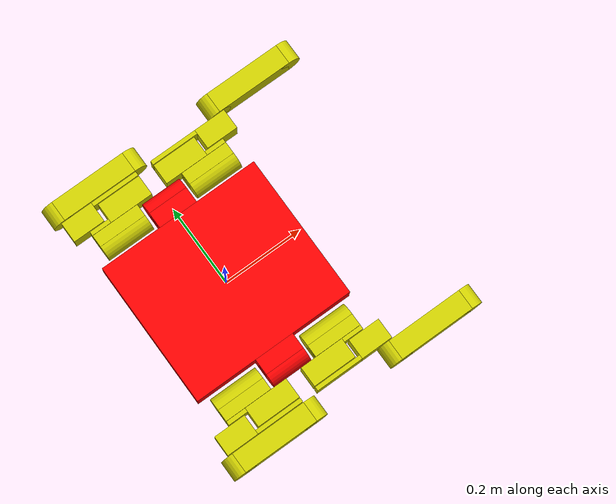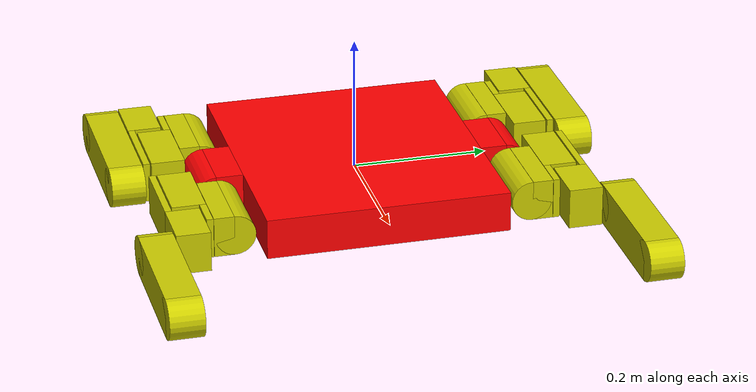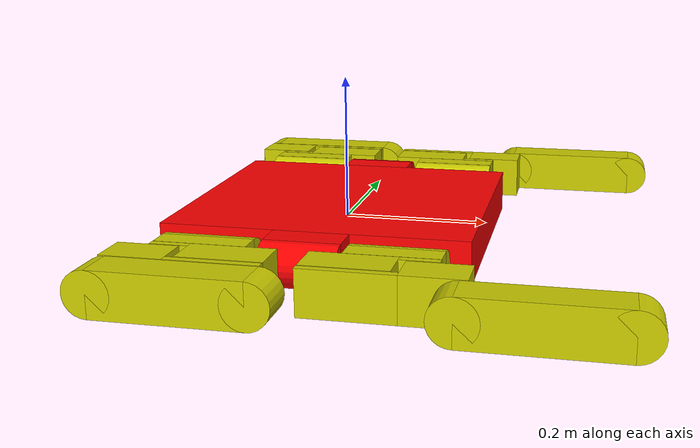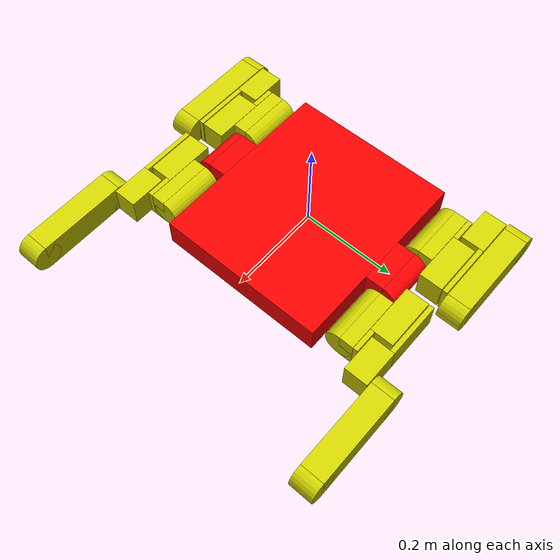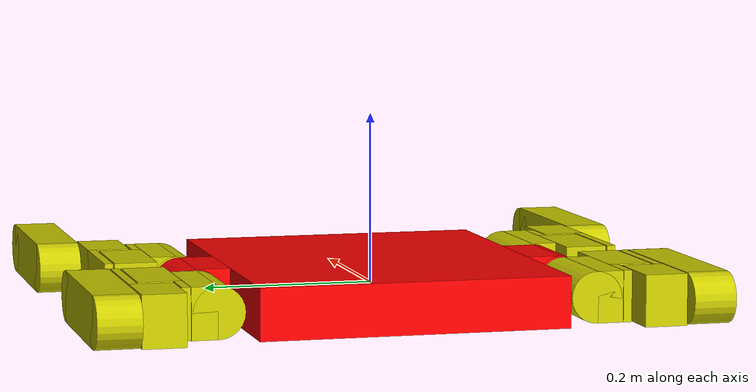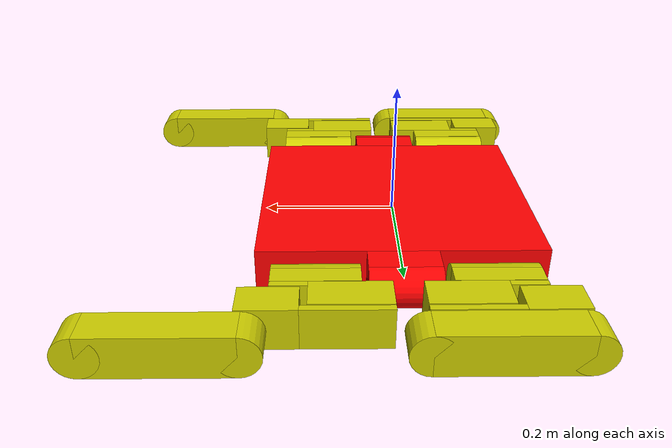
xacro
<?xml version="1.0"?>
<robot name="cricket_robot" xmlns:sensor="http://playerstage.sourceforge.net/gazebo/xmlschema/#sensor"
       xmlns:controller="http://playerstage.sourceforge.net/gazebo/xmlschema/#controller"
       xmlns:interface="http://playerstage.sourceforge.net/gazebo/xmlschema/#interface"
       xmlns:xacro="http://playerstage.sourceforge.net/gazebo/xmlschema/#xacro">
       <!-- xmlns:xacro="http://ros.org/wiki/xacro"> -->

  <xacro:property name="body_height" value="0.06"/>
  <xacro:property name="body_length" value="0.41"/>
  <xacro:property name="body_width" value="0.36"/>
  <xacro:property name="track_length" value="0.25"/>
  <xacro:property name="body_box_size" value="0.1"/>
  <xacro:property name="pi" value="3.1415" />
  <xacro:property name="cyl_rad" value="0.03" />
  <!-- Leg values -->
  <xacro:property name="shoulder" value="0.12" />
  <xacro:property name="s_box" value="-0.05" />
  <xacro:property name="s2_base" value="-0.015" />
  <xacro:property name="s2_box" value="0.045" />
  <xacro:property name="s2_base_box" value="-0.14"/>
  <xacro:property name="k_box" value="-0.03" />
  <xacro:property name="k_base_box" value="0.18" />
  <xacro:property name="track" value="0.095" />

  <material name="yellow">
    <color rgba="0.8 0.8 0 1"/>
  </material>

  <material name="red">
    <color rgba="1 0 0 1"/>
  </material>

  <xacro:macro name="default_inertial" params="mass">
    <inertial>
      <mass value="${mass}" />
      <inertia ixx="1.0" ixy="0.0" ixz="0.0" iyy="1.0" iyz="0.0" izz="1.0" />
    </inertial>
  </xacro:macro>

  <!-- main body -->
  <link name="base_link">
    <visual>
      <geometry>
        <box size="${body_length} ${body_width} ${body_height}"/>
      </geometry>
      <material name="red"/>
    </visual>
    <collision>
      <geometry>
        <box size="${body_length} ${body_width} ${body_height}"/>
      </geometry>
    </collision>
  </link>

  <link name="dummy_link">
    <visual name="">
      <origin xyz="0.0 0.0 0.0" rpy="0.0 0.0 0.0"/>
      <geometry>
        <box size="${body_length} ${body_width} ${body_height}"/>
      </geometry>
      <material name="red"/>
    </visual>
    <collision>
      <origin xyz="0.0 0.0 0.0" rpy="0.0 0.0 0.0"/>
      <geometry>
        <box size="0.0 0.0 0.0"/>
      </geometry>
    </collision>
    <xacro:default_inertial mass="10"/>
  </link>

  <joint name="dummy_joint" type="fixed">
    <origin xyz="0.0 0.0 0.0" rpy="0.0 0.0 0.0"/>
    <parent link="base_link"/>
    <child link="dummy_link"/>
    <axis xyz="0.0 0.0 0.0"/>
  </joint>

  <!-- #####  BODY  BOX ##### -->

  <xacro:macro name="body_box" params="body_side origin_bb origin_bc">
    <link name="${body_side}_box">
      <visual>
        <geometry>
            <box size="${body_box_size} 0.04 ${body_height}"/>
        </geometry>
        <material name="red"/>
      </visual>
      <collision>
        <geometry>
            <box size="${body_box_size} 0.04 ${body_height}"/>
        </geometry>
      </collision>
    </link>

    <joint name="body_to_${body_side}_box" type="fixed">
      <parent link="base_link"/>
      <child link="${body_side}_box"/>
      <origin xyz="0.0 ${origin_bb} 0.0"/>
    </joint>

    <link name="${body_side}_cylinder">
      <visual name="${body_side}_cylinder">
        <origin rpy="0 ${pi/2} 0" xyz="0 0.0 0"/>
        <geometry>
          <cylinder radius="${cyl_rad}" length="0.1"/>
        </geometry>
        <material name="red"/>
      </visual>
      <collision>
        <origin rpy="0 ${pi/2} 0" xyz="0 0.0 0"/>
        <geometry>
          <cylinder radius="${cyl_rad}" length="0.1"/>
        </geometry>
      </collision>
      <xacro:default_inertial mass="0.5"/>
    </link>

    <joint name="${body_side}_box_to_cylinder" type="fixed">
      <parent link="${body_side}_box"/>
      <child link="${body_side}_cylinder"/>
      <origin xyz="0.0 ${origin_bc} 0.0" rpy="0.0 0.0 0.0"/>
    </joint>

  </xacro:macro>

  <xacro:body_box body_side="right" origin_bb="0.2" origin_bc="0.02"/>
  <xacro:body_box body_side="left" origin_bb="-0.2" origin_bc="-0.02"/>

  <!-- ##### RIGHT LEGS ##### -->

  <xacro:macro name="right_leg" params="body_side rev rpy_track">
    <!-- SHOULDER 1 -->
    <link name="r_${body_side}_shoulder_cylinder">
      <visual name="r_${body_side}_shoulder_cylinder">
        <origin rpy="0 ${pi/2} 0" xyz="0.0 0.0 0"/>
        <geometry>
          <cylinder radius="${cyl_rad}" length="0.12"/>
        </geometry>
        <material name="yellow"/>
      </visual>
      <collision>
        <origin rpy="0 ${pi/2} 0" xyz="0.0 0.0 0"/>
        <geometry>
          <cylinder radius="${cyl_rad}" length="0.12"/>
        </geometry>
      </collision>
      <xacro:default_inertial mass="0.5"/>
    </link>

    <joint name="r_${body_side}_shoulder_to_body" type="revolute">
      <axis xyz="1 0.0 0.0"/>
      <limit effort="1000.0" lower="-1.57075" upper="1.57075" velocity="0.5"/>
      <origin xyz="${rev*shoulder} 0.0 0.0" rpy="0 0 0.0"/>
      <parent link="right_cylinder"/>
      <child link="r_${body_side}_shoulder_cylinder"/>
      <limit effort="30" velocity="1.0"/>
      <dynamics damping="0.0" friction="0.0"/>
    </joint>

    <transmission name="r_${body_side}_shoulder_to_body_trans">
      <type>transmission_interface/SimpleTransmission</type>
      <actuator name="${body_side}_r_shoulder_to_body_motor">
        <mechanicalReduction>1</mechanicalReduction>
      </actuator>
      <joint name="r_${body_side}_shoulder_to_body">
        <hardwareInterface>hardware_interface/PositionJointInterface</hardwareInterface>
      </joint>
    </transmission>

    <link name="r_${body_side}_shoulder_box">
      <visual name="r_${body_side}_shoulder_box">
        <origin rpy="0 0 0" xyz="${rev*s_box} -0.0005 0"/>
        <geometry>
          <box size="0.12 0.03 0.06"/>
        </geometry>
        <material name="yellow"/>
      </visual>
      <collision>
        <origin rpy="0 0 0" xyz="${rev*s_box} -0.0005 0"/>
        <geometry>
          <box size="0.12 0.03 0.06"/>
        </geometry>
      </collision>
      <xacro:default_inertial mass="3.5"/>
    </link>

    <joint name="r_${body_side}_shoulder_cyl_to_box" type="fixed">
      <origin xyz="${- rev * s_box} 0.017 0.0" rpy="0.0 0.0 0.0"/>
      <parent link="r_${body_side}_shoulder_cylinder"/>
      <child link="r_${body_side}_shoulder_box"/>
    </joint>

    <!-- SHOULDER 2 -->
    <link name="r_${body_side}_shoulder2_base">
      <visual name="r_${body_side}_shoulder2_base">
        <origin xyz="${rev*s2_base} 0.0 0.0" rpy="0.0 0.0 0.0"/>
        <geometry>
          <box size="0.05 0.01 0.06"/>
        </geometry>
        <material name="yellow"/>
      </visual>
      <collision>
        <origin xyz="${rev*s2_base} 0.0 0.0" rpy="0.0 0.0 0.0"/>
        <geometry>
          <box size="0.05 0.01 0.06"/>
        </geometry>
      </collision>
      <xacro:default_inertial mass="0.5"/>
    </link>

    <joint name="r_${body_side}_shoulder2_to_shoulder" type="continuous">
      <axis xyz="0.0 1 0.0"/>
      <origin xyz="0.0 0.02 0.0" rpy="0.0 0.0 0.0"/>
      <parent link="r_${body_side}_shoulder_box"/>
      <child link="r_${body_side}_shoulder2_base"/>
      <limit effort="30" velocity="1.0"/>
      <dynamics damping="0.0" friction="0.0"/>
    </joint>

    <transmission name="r_${body_side}_shoulder2_to_shoulder_trans">
      <type>transmission_interface/SimpleTransmission</type>
      <actuator name="${body_side}_$_shoulder2_to_shoulder_motor">
        <mechanicalReduction>1</mechanicalReduction>
      </actuator>
      <joint name="r_${body_side}_shoulder2_to_shoulder">
        <hardwareInterface>hardware_interface/PositionJointInterface</hardwareInterface>
      </joint>
    </transmission>

    <link name="r_${body_side}_shoulder2_box">
      <visual name="r_${body_side}_shoulder2_box">
        <origin xyz="${rev*s2_box} 0.02 0.0" rpy="0.0 0.0 0.0"/>
        <geometry>
          <box size="0.11 0.05 0.06"/>
        </geometry>
        <material name="yellow"/>
      </visual>
      <collision>
        <origin xyz="${rev*s2_box} 0.02 0.0" rpy="0.0 0.0 0.0"/>
        <geometry>
          <box size="0.11 0.05 0.06"/>
        </geometry>
      </collision>
      <xacro:default_inertial mass="3"/>
    </link>

    <joint name="r_${body_side}_shoulder2_base_to_box" type="fixed">
      <origin xyz="${rev*s2_base_box} 0.0 0.0" rpy="0.0 0.0 0.0"/>
      <parent link="r_${body_side}_shoulder2_base"/>
      <child link="r_${body_side}_shoulder2_box"/>
    </joint>

    <!-- KNEE -->
    <link name="r_${body_side}_knee_base">
      <visual name="r_${body_side}_knee_base">
        <origin xyz="${-rev * s_box} 0.0 0.0" rpy="0.0 0.0 0.0"/>
        <geometry>
          <box size="0.12 0.01 0.06"/>
        </geometry>
        <material name="yellow"/>
      </visual>
      <collision>
        <origin xyz="${-rev * s_box} 0.0 0.0" rpy="0.0 0.0 0.0"/>
        <geometry>
          <box size="0.12 0.01 0.06"/>
        </geometry>
      </collision>
      <xacro:default_inertial mass="0.5"/>
    </link>

    <joint name="r_${body_side}_shoulder2_to_knee" type="continuous">
      <axis xyz="0.0 1 0.0"/>
      <origin xyz="0.0 0.052 0.0" rpy="0.0 0.0 0.0"/>
      <parent link="r_${body_side}_shoulder2_box"/>
      <child link="r_${body_side}_knee_base"/>
      <limit effort="30" velocity="1.0"/>
      <dynamics damping="0.0" friction="0.0"/>
    </joint>

    <transmission name="r_${body_side}_shoulder2_to_knee_trans">
      <type>transmission_interface/SimpleTransmission</type>
      <actuator name="${body_side}_r_shoulder2_to_knee_motor">
        <mechanicalReduction>1</mechanicalReduction>
      </actuator>
      <joint name="r_${body_side}_shoulder2_to_knee">
        <hardwareInterface>hardware_interface/PositionJointInterface</hardwareInterface>
      </joint>
    </transmission>

    <link name="r_${body_side}_knee_box">
      <visual name="r_${body_side}_knee_box">
        <origin xyz="${rev*k_box} -0.02 0.0" rpy="0.0 0.0 0.0"/>
        <geometry>
          <box size="0.08 0.05 0.06"/>
        </geometry>
        <material name="yellow"/>
      </visual>
      <collision>
        <origin xyz="${rev*k_box} -0.02 0.0" rpy="0.0 0.0 0.0"/>
        <geometry>
          <box size="0.08 0.05 0.06"/>
        </geometry>
      </collision>
      <xacro:default_inertial mass="3.5"/>
    </link>

    <joint name="r_${body_side}_knee_base_to_box" type="fixed">
      <origin xyz="${rev*k_base_box} 0.0 0.0" rpy="0.0 0.0 0.0"/>
      <parent link="r_${body_side}_knee_base"/>
      <child link="r_${body_side}_knee_box"/>
    </joint>

    <!-- ANKLE & TRACK -->
    <link name="r_${body_side}_jointed_track">
      <visual name="r_${body_side}_jointed_track">
        <origin xyz="0.0 0.0 0.0" rpy="0.0 1.57075 1.57075"/>
        <geometry>
          <cylinder radius="${cyl_rad}" length="0.05"/>
        </geometry>
        <material name="yellow"/>
      </visual>
      <collision>
        <origin xyz="0.0 0.0 0.0" rpy="0.0 1.57075 1.57075"/>
        <geometry>
          <cylinder radius="${cyl_rad}" length="0.05"/>
        </geometry>
      </collision>
      <xacro:default_inertial mass="0.5"/>
    </link>

    <joint name="r_${body_side}_ankle" type="continuous">
      <axis xyz="0.0 1 0.0"/>
      <origin xyz="0.0 0.032 0.0" rpy="0.0 0.0 0.0"/>
      <parent link="r_${body_side}_knee_box"/>
      <child link="r_${body_side}_jointed_track"/>
      <limit effort="30" velocity="1.0"/>
      <dynamics damping="0.0" friction="0.0"/>
    </joint>

    <transmission name="r_${body_side}_ankle_trans">
      <type>transmission_interface/SimpleTransmission</type>
      <actuator name="${body_side}_r_ankle_motor">
        <mechanicalReduction>1</mechanicalReduction>
      </actuator>
      <joint name="r_${body_side}_ankle">
        <hardwareInterface>hardware_interface/PositionJointInterface</hardwareInterface>
      </joint>
    </transmission>

    <link name="r_${body_side}_track">
      <visual name="r_${body_side}_track">
        <origin xyz="0.0 0.0 0.0" rpy="0.0 0.0 0.0"/>
        <geometry>
          <box size="0.190 0.05 0.06"/>
        </geometry>
        <material name="yellow"/>
      </visual>
      <collision>
        <origin xyz="0.0 0.0 0.0" rpy="0.0 0.0 0.0"/>
        <geometry>
          <box size="0.190 0.05 0.06"/>
        </geometry>
      </collision>
      <xacro:default_inertial mass="4"/>
    </link>

    <joint name="r_${body_side}_jointed_track_to_track" type="fixed">
      <origin xyz="0.095 0.0 0.0" rpy="0.0 ${rpy_track} 0.0"/>
      <parent link="r_${body_side}_jointed_track"/>
      <child link="r_${body_side}_track"/>
    </joint>

    <link name="r_${body_side}_ends_track">
      <visual name="r_${body_side}_ends_track">
        <origin xyz="0.0 0.0 0.0" rpy="0.0 1.57075 1.57075"/>
        <geometry>
          <cylinder radius="${cyl_rad}" length="0.05"/>
        </geometry>
        <material name="yellow"/>
      </visual>
      <collision>
        <origin xyz="0.0 0.0 0.0" rpy="0.0 1.57075 1.57075"/>
        <geometry>
          <cylinder radius="${cyl_rad}" length="0.05"/>
        </geometry>
      </collision>
      <xacro:default_inertial mass="0.5"/>
    </link>

    <joint name="r_${body_side}_final_track_joint" type="continuous">
      <axis xyz="0.0 1 0.0"/>
      <origin xyz="${rev*track} 0.0 0.0" rpy="0.0 0.0 0.0"/>
      <parent link="r_${body_side}_track"/>
      <child link="r_${body_side}_ends_track"/>
      <limit effort="30" velocity="1.0"/>
      <dynamics damping="0.0" friction="0.0"/>
    </joint>

    <transmission name="r_${body_side}_final_track_joint_trans">
      <type>transmission_interface/SimpleTransmission</type>
      <actuator name="${body_side}_r_final_track_joint_motor">
        <mechanicalReduction>1</mechanicalReduction>
      </actuator>
      <joint name="r_${body_side}_final_track_joint">
        <hardwareInterface>hardware_interface/VelocityJointInterface</hardwareInterface>
      </joint>
    </transmission>

    <gazebo reference="r_${body_side}_ends_track">
      <mu1 value="200.0"/>
      <mu2 value="100.0"/>
      <kp value="10000000.0" />
      <kd value="1.0" />
      <material>Gazebo/Grey</material>
    </gazebo>
  </xacro:macro>

  <xacro:right_leg body_side="front" rev="1" rpy_track="0.0"/>
  <xacro:right_leg body_side="back" rev="-1" rpy_track="3.1415"/>

  <!-- ##### LEFT LEGS ###### -->

  <xacro:macro name="left_leg" params="body_side rev rpy_track">
    <!-- SHOULDER 1 -->
    <link name="l_${body_side}_shoulder_cylinder">
      <visual name="l_${body_side}_shoulder_cylinder">
        <origin rpy="0 ${pi/2} 0" xyz="0.0 0.0 0"/>
        <geometry>
          <cylinder radius="${cyl_rad}" length="0.12"/>
        </geometry>
        <material name="yellow"/>
      </visual>
      <collision>
        <origin rpy="0 ${pi/2} 0" xyz="0.0 0.0 0"/>
        <geometry>
          <cylinder radius="${cyl_rad}" length="0.12"/>
        </geometry>
      </collision>
      <xacro:default_inertial mass="3.5"/>
    </link>

    <joint name="l_${body_side}_shoulder_to_body" type="revolute">
      <axis xyz="1 0.0 0.0"/>
      <limit effort="1000.0" lower="-1.57075" upper="1.57075" velocity="0.5"/>
      <origin xyz="${rev*shoulder} 0.0 0.0" rpy="0 0 0.0"/>
      <parent link="left_cylinder"/>
      <child link="l_${body_side}_shoulder_cylinder"/>
      <limit effort="30" velocity="1.0"/>
    </joint>

    <transmission name="l_${body_side}_shoulder_to_body_trans">
      <type>transmission_interface/SimpleTransmission</type>
      <actuator name="${body_side}_l_shoulder_to_body_motor">
        <mechanicalReduction>1</mechanicalReduction>
      </actuator>
      <joint name="l_${body_side}_shoulder_to_body">
        <hardwareInterface>hardware_interface/PositionJointInterface</hardwareInterface>
      </joint>
    </transmission>

    <link name="l_${body_side}_shoulder_box">
      <visual name="l_${body_side}_shoulder_box">
        <origin rpy="0 0 0" xyz=" ${rev*s_box} 0.0005 0"/>
        <geometry>
          <box size="0.12 0.03 0.06"/>
        </geometry>
        <material name="yellow"/>
      </visual>
      <collision>
        <origin rpy="0 0 0" xyz=" ${rev*s_box} 0.0005 0"/>
        <geometry>
          <box size="0.12 0.03 0.06"/>
        </geometry>
      </collision>
      <xacro:default_inertial mass="0.5"/>
    </link>

    <joint name="l_${body_side}_shoulder_cyl_to_box" type="fixed">
      <origin xyz="${- rev*s_box} -0.017 0.0" rpy="0.0 0.0 0.0"/>
      <parent link="l_${body_side}_shoulder_cylinder"/>
      <child link="l_${body_side}_shoulder_box"/>
    </joint>

    <!-- SHOULDER 2  -->
    <link name="l_${body_side}_shoulder2_base">
      <visual name="l_${body_side}_shoulder2_base">
        <origin xyz="${rev*s2_base} 0.0 0.0" rpy="0.0 0.0 0.0"/>
        <geometry>
          <box size="0.05 0.01 0.06"/>
        </geometry>
        <material name="yellow"/>
      </visual>
      <collision>
        <origin xyz="${rev*s2_base} 0.0 0.0" rpy="0.0 0.0 0.0"/>
        <geometry>
          <box size="0.05 0.01 0.06"/>
        </geometry>
      </collision>
      <xacro:default_inertial mass="0.5"/>
    </link>

    <joint name="l_${body_side}_shoulder2_to_shoulder" type="continuous">
      <axis xyz="0.0 1 0.0"/>
      <origin xyz="0.0 -0.02 0.0" rpy="0.0 0.0 0.0"/>
      <parent link="l_${body_side}_shoulder_box"/>
      <child link="l_${body_side}_shoulder2_base"/>
      <limit effort="30" velocity="1.0"/>
      <dynamics damping="0.0" friction="0.0"/>
    </joint>

    <transmission name="l_${body_side}_shoulder2_to_shoulder_trans">
      <type>transmission_interface/SimpleTransmission</type>
      <actuator name="${body_side}_l_shoulder2_to_shoulder_motor">
        <mechanicalReduction>1</mechanicalReduction>
      </actuator>
      <joint name="l_${body_side}_shoulder2_to_shoulder">
        <hardwareInterface>hardware_interface/PositionJointInterface</hardwareInterface>
      </joint>
    </transmission>

    <link name="l_${body_side}_shoulder2_box">
      <visual name="l_${body_side}_shoulder2_box">
        <origin xyz="${rev*s2_box} -0.02 0.0" rpy="0.0 0.0 0.0"/>
        <geometry>
          <box size="0.11 0.05 0.06"/>
        </geometry>
        <material name="yellow"/>
      </visual>
      <collision>
        <origin xyz="${rev*s2_box} -0.02 0.0" rpy="0.0 0.0 0.0"/>
        <geometry>
          <box size="0.11 0.05 0.06"/>
        </geometry>
      </collision>
      <xacro:default_inertial mass="3"/>
    </link>

    <joint name="l_${body_side}_shoulder2_base_to_box" type="fixed">
      <origin xyz="${rev*s2_base_box} 0.0 0.0" rpy="0.0 0.0 0.0"/>
      <parent link="l_${body_side}_shoulder2_base"/>
      <child link="l_${body_side}_shoulder2_box"/>
    </joint>

    <!-- KNEE -->
    <link name="l_${body_side}_knee_base">
      <visual name="l_${body_side}_knee_base">
        <origin xyz="${-rev*s_box} 0.0 0.0" rpy="0.0 0.0 0.0"/>
        <geometry>
          <box size="0.12 0.01 0.06"/>
        </geometry>
        <material name="yellow"/>
      </visual>
      <collision>
        <origin xyz="${-rev*s_box} 0.0 0.0" rpy="0.0 0.0 0.0"/>
        <geometry>
          <box size="0.12 0.01 0.06"/>
        </geometry>
      </collision>
      <xacro:default_inertial mass="4"/>
    </link>

    <joint name="l_${body_side}_shoulder2_to_knee" type="continuous">
      <axis xyz="0.0 1 0.0"/>
      <origin xyz="0.0 -0.052 0.0" rpy="0.0 0.0 0.0"/>
      <parent link="l_${body_side}_shoulder2_box"/>
      <child link="l_${body_side}_knee_base"/>
    </joint>

    <transmission name="l_${body_side}_shoulder2_to_knee_trans">
      <type>transmission_interface/SimpleTransmission</type>
      <actuator name="${body_side}_l_shoulder2_to_knee_motor">
        <mechanicalReduction>1</mechanicalReduction>
      </actuator>
      <joint name="l_${body_side}_shoulder2_to_knee">
        <hardwareInterface>hardware_interface/PositionJointInterface</hardwareInterface>
      </joint>
    </transmission>

    <link name="l_${body_side}_knee_box">
      <visual name="l_${body_side}_knee_box">
        <origin xyz="${rev*k_box} 0.02 0.0" rpy="0.0 0.0 0.0"/>
        <geometry>
          <box size="0.08 0.05 0.06"/>
        </geometry>
        <material name="yellow"/>
      </visual>
      <collision>
        <origin xyz="${rev*k_box} 0.02 0.0" rpy="0.0 0.0 0.0"/>
        <geometry>
          <box size="0.08 0.05 0.06"/>
        </geometry>
      </collision>
      <xacro:default_inertial mass="0.5"/>
    </link>

    <joint name="l_${body_side}_knee_base_to_box" type="fixed">
      <origin xyz="${rev*k_base_box} 0.0 0.0" rpy="0.0 0.0 0.0"/>
      <parent link="l_${body_side}_knee_base"/>
      <child link="l_${body_side}_knee_box"/>
    </joint>

    <!-- ANKLE & TRACK -->
    <link name="l_${body_side}_jointed_track">
      <visual name="l_${body_side}_jointed_track">
        <origin xyz="0.0 0.0 0.0" rpy="0.0 1.57075 1.57075"/>
        <geometry>
          <cylinder radius="${cyl_rad}" length="0.05"/>
        </geometry>
        <material name="yellow"/>
      </visual>
      <collision>
        <origin xyz="0.0 0.0 0.0" rpy="0.0 1.57075 1.57075"/>
        <geometry>
          <cylinder radius="${cyl_rad}" length="0.05"/>
        </geometry>
      </collision>
      <xacro:default_inertial mass="0.5"/>
    </link>

    <joint name="l_${body_side}_ankle" type="continuous">
      <axis xyz="0.0 1 0.0"/>
      <origin xyz="0.0 -0.032 0.0" rpy="0.0 0.0 0.0"/>
      <parent link="l_${body_side}_knee_box"/>
      <child link="l_${body_side}_jointed_track"/>
    </joint>

    <transmission name="l_${body_side}_ankle_trans">
      <type>transmission_interface/SimpleTransmission</type>
      <actuator name="${body_side}_l_ankle_motor">
        <mechanicalReduction>1</mechanicalReduction>
      </actuator>
      <joint name="l_${body_side}_ankle">
        <hardwareInterface>hardware_interface/PositionJointInterface</hardwareInterface>
      </joint>
    </transmission>

    <link name="l_${body_side}_track">
      <visual name="l_${body_side}_track">
        <origin xyz="0.0 0.0 0.0" rpy="0.0 0.0 0.0"/>
        <geometry>
          <box size="0.190 0.05 0.06"/>
        </geometry>
        <material name="yellow"/>
      </visual>
      <collision>
        <origin xyz="0.0 0.0 0.0" rpy="0.0 0.0 0.0"/>
        <geometry>
          <box size="0.190 0.05 0.06"/>
        </geometry>
      </collision>
      <xacro:default_inertial mass="4.5"/>
    </link>

    <joint name="l_${body_side}_jointed_track_to_track" type="fixed">
      <origin xyz="0.095 0.0 0.0" rpy="0.0 ${rpy_track} 0.0"/>
      <parent link="l_${body_side}_jointed_track"/>
      <child link="l_${body_side}_track"/>
    </joint>

    <link name="l_${body_side}_ends_track">
      <visual name="l_${body_side}_ends_track">
        <origin xyz="0.0 0.0 0.0" rpy="0.0 1.57075 1.57075"/>
        <geometry>
          <cylinder radius="${cyl_rad}" length="0.05"/>
        </geometry>
        <material name="yellow"/>
      </visual>
      <collision>
        <origin xyz="0.0 0.0 0.0" rpy="0.0 1.57075 1.57075"/>
        <geometry>
          <cylinder radius="${cyl_rad}" length="0.05"/>
        </geometry>
      </collision>
      <xacro:default_inertial mass="0.5"/>
    </link>

    <joint name="l_${body_side}_final_track_joint" type="continuous">
      <axis xyz="0.0 1 0.0"/>
      <origin xyz="${rev*track} 0.0 0.0" rpy="0.0 0.0 0.0"/>
      <parent link="l_${body_side}_track"/>
      <child link="l_${body_side}_ends_track"/>
    </joint>

    <transmission name="l_${body_side}_final_track_joint_trans">
      <type>transmission_interface/SimpleTransmission</type>
      <actuator name="${body_side}_l_final_track_joint_motor">
        <mechanicalReduction>1</mechanicalReduction>
      </actuator>
      <joint name="l_${body_side}_final_track_joint">
        <hardwareInterface>hardware_interface/VelocityJointInterface</hardwareInterface>
      </joint>
    </transmission>

    <gazebo reference="r_${body_side}_ends_track">
      <mu1 value="200.0"/>
      <mu2 value="100.0"/>
      <kp value="10000000.0" />
      <kd value="1.0" />
      <material>Gazebo/Grey</material>
    </gazebo>
  </xacro:macro>

  <xacro:left_leg body_side="front" rev="1" rpy_track="0.0"/>
  <xacro:left_leg body_side="back" rev="-1" rpy_track="3.1415"/>

  <!-- Gazebo plugin for ROS Control -->
  <gazebo>
    <plugin name="gazebo_ros_control" filename="libgazebo_ros_control.so">
      <robotNamespace>/</robotNamespace>
    </plugin>
  </gazebo>

</robot>
